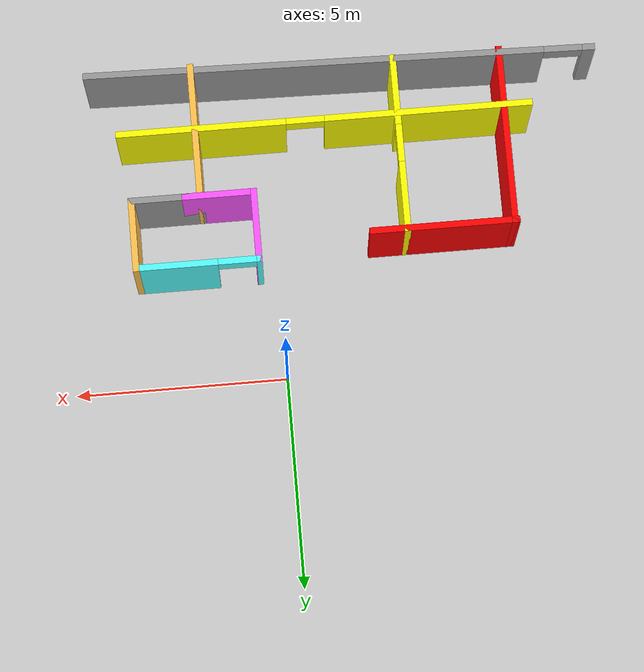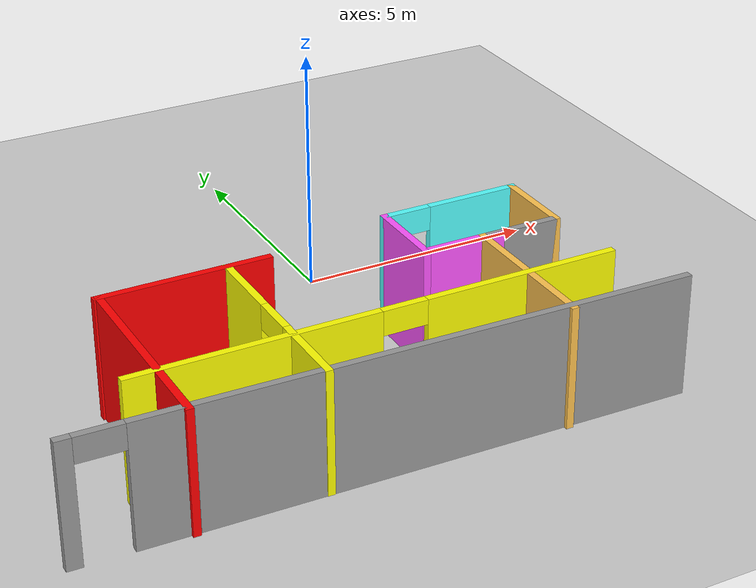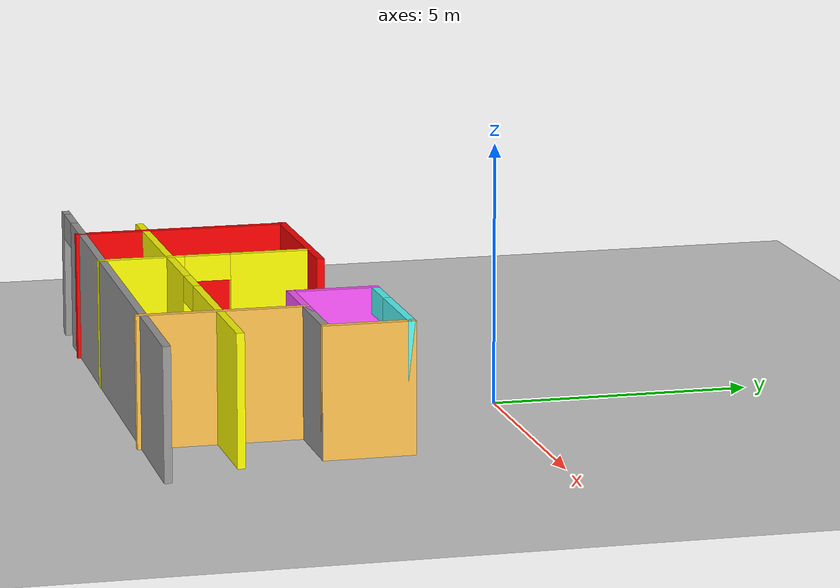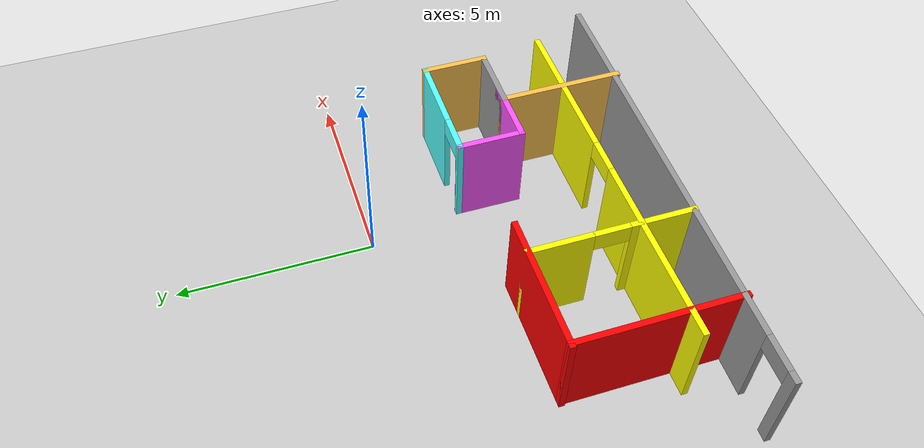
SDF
<sdf version="1.6">
 <world name="default">
  <model name="ground_plane">
   <static>1</static>
   <link name="link">
    <collision name="collision">
     <geometry><plane><normal>0 0 1</normal><size>100 100</size></plane></geometry>
     <surface><friction><ode><mu>100</mu><mu2>50</mu2></ode></friction></surface>
    </collision>
    <visual name="visual">
     <cast_shadows>0</cast_shadows>
     <geometry><plane><normal>0 0 1</normal><size>100 100</size></plane></geometry>
     <material>
      <script><uri>file://media/materials/scripts/gazebo.material</uri><name>Gazebo/Grey</name></script>
     </material>
    </visual>
   </link>
  </model>
  <model name="try_example">
   <link name="Wall_44">
    <pose>3.4314 -5.99122 0 0 -0 1.5708</pose>
    <visual name="Wall_44_Visual">
     <pose>0 0 1.25 0 -0 0</pose>
     <geometry><box><size>3.25 0.15 2.5</size></box></geometry>
     <material>
      <script><uri>file://media/materials/scripts/gazebo.material</uri><name>Gazebo/Grey</name></script>
      <ambient>1 0.764706 0.305882 1</ambient>
      <diffuse>0.7 0.7 0.7 1</diffuse>
      <specular>0.01 0.01 0.01 1</specular>
      <emissive>0 0 0 1</emissive>
     </material>
    </visual>
    <collision name="Wall_44_Collision">
     <pose>0 0 1.25 0 -0 0</pose>
     <geometry><box><size>3.25 0.15 2.5</size></box></geometry>
     <surface>
      <friction>
       <ode><mu>1</mu><mu2>1</mu2><fdir1>0 0 0</fdir1><slip1>0</slip1><slip2>0</slip2></ode>
       <torsional>
        <coefficient>1</coefficient>
        <patch_radius>0</patch_radius>
        <surface_radius>0</surface_radius>
        <use_patch_radius>1</use_patch_radius>
        <ode><slip>0</slip></ode>
       </torsional>
      </friction>
      <bounce><restitution_coefficient>0</restitution_coefficient><threshold>1e+06</threshold></bounce>
      <contact>
       <collide_without_contact>0</collide_without_contact>
       <collide_without_contact_bitmask>1</collide_without_contact_bitmask>
       <collide_bitmask>1</collide_bitmask>
       <ode>
        <soft_cfm>0</soft_cfm>
        <soft_erp>0.2</soft_erp>
        <kp>1e+13</kp>
        <kd>1</kd>
        <max_vel>0.01</max_vel>
        <min_depth>0</min_depth>
       </ode>
       <bullet>
        <split_impulse>1</split_impulse>
        <split_impulse_penetration_threshold>-0.01</split_impulse_penetration_threshold>
        <soft_cfm>0</soft_cfm>
        <soft_erp>0.2</soft_erp>
        <kp>1e+13</kp>
        <kd>1</kd>
       </bullet>
      </contact>
     </surface>
    </collision>
   </link>
   <link name="Wall_45">
    <pose>4.2314 -4.44122 0 0 -0 0</pose>
    <visual name="Wall_45_Visual">
     <pose>0 0 1.25 0 -0 0</pose>
     <geometry><box><size>1.75 0.15 2.5</size></box></geometry>
     <material>
      <script><uri>file://media/materials/scripts/gazebo.material</uri><name>Gazebo/Grey</name></script>
      <ambient>0 0 0 1</ambient>
      <diffuse>0.7 0.7 0.7 1</diffuse>
      <specular>0.01 0.01 0.01 1</specular>
      <emissive>0 0 0 1</emissive>
     </material>
    </visual>
    <collision name="Wall_45_Collision">
     <pose>0 0 1.25 0 -0 0</pose>
     <geometry><box><size>1.75 0.15 2.5</size></box></geometry>
     <surface>
      <friction>
       <ode><mu>1</mu><mu2>1</mu2><fdir1>0 0 0</fdir1><slip1>0</slip1><slip2>0</slip2></ode>
       <torsional>
        <coefficient>1</coefficient>
        <patch_radius>0</patch_radius>
        <surface_radius>0</surface_radius>
        <use_patch_radius>1</use_patch_radius>
        <ode><slip>0</slip></ode>
       </torsional>
      </friction>
      <bounce><restitution_coefficient>0</restitution_coefficient><threshold>1e+06</threshold></bounce>
      <contact>
       <collide_without_contact>0</collide_without_contact>
       <collide_without_contact_bitmask>1</collide_without_contact_bitmask>
       <collide_bitmask>1</collide_bitmask>
       <ode>
        <soft_cfm>0</soft_cfm>
        <soft_erp>0.2</soft_erp>
        <kp>1e+13</kp>
        <kd>1</kd>
        <max_vel>0.01</max_vel>
        <min_depth>0</min_depth>
       </ode>
       <bullet>
        <split_impulse>1</split_impulse>
        <split_impulse_penetration_threshold>-0.01</split_impulse_penetration_threshold>
        <soft_cfm>0</soft_cfm>
        <soft_erp>0.2</soft_erp>
        <kp>1e+13</kp>
        <kd>1</kd>
       </bullet>
      </contact>
     </surface>
    </collision>
   </link>
   <link name="Wall_46">
    <pose>5.0314 -3.64122 0 0 -0 1.5708</pose>
    <visual name="Wall_46_Visual">
     <pose>0 0 1.25 0 -0 0</pose>
     <geometry><box><size>1.75 0.15 2.5</size></box></geometry>
     <material>
      <script><uri>file://media/materials/scripts/gazebo.material</uri><name>Gazebo/Grey</name></script>
      <ambient>1 0.764706 0.305882 1</ambient>
      <diffuse>0.7 0.7 0.7 1</diffuse>
      <specular>0.01 0.01 0.01 1</specular>
      <emissive>0 0 0 1</emissive>
     </material>
    </visual>
    <collision name="Wall_46_Collision">
     <pose>0 0 1.25 0 -0 0</pose>
     <geometry><box><size>1.75 0.15 2.5</size></box></geometry>
     <surface>
      <friction>
       <ode><mu>1</mu><mu2>1</mu2><fdir1>0 0 0</fdir1><slip1>0</slip1><slip2>0</slip2></ode>
       <torsional>
        <coefficient>1</coefficient>
        <patch_radius>0</patch_radius>
        <surface_radius>0</surface_radius>
        <use_patch_radius>1</use_patch_radius>
        <ode><slip>0</slip></ode>
       </torsional>
      </friction>
      <bounce><restitution_coefficient>0</restitution_coefficient><threshold>1e+06</threshold></bounce>
      <contact>
       <collide_without_contact>0</collide_without_contact>
       <collide_without_contact_bitmask>1</collide_without_contact_bitmask>
       <collide_bitmask>1</collide_bitmask>
       <ode>
        <soft_cfm>0</soft_cfm>
        <soft_erp>0.2</soft_erp>
        <kp>1e+13</kp>
        <kd>1</kd>
        <max_vel>0.01</max_vel>
        <min_depth>0</min_depth>
       </ode>
       <bullet>
        <split_impulse>1</split_impulse>
        <split_impulse_penetration_threshold>-0.01</split_impulse_penetration_threshold>
        <soft_cfm>0</soft_cfm>
        <soft_erp>0.2</soft_erp>
        <kp>1e+13</kp>
        <kd>1</kd>
       </bullet>
      </contact>
     </surface>
    </collision>
   </link>
   <link name="Wall_47">
    <pose>3.6064 -2.84122 0 0 -0 3.14159</pose>
    <visual name="Wall_47_Visual_0">
     <pose>-0.515109 0 1.25 0 -0 0</pose>
     <geometry><box><size>1.96978 0.15 2.5</size></box></geometry>
     <material>
      <script><uri>file://media/materials/scripts/gazebo.material</uri><name>Gazebo/Grey</name></script>
      <ambient>0.333333 1 1 1</ambient>
      <diffuse>0.7 0.7 0.7 1</diffuse>
      <specular>0.01 0.01 0.01 1</specular>
      <emissive>0 0 0 1</emissive>
     </material>
    </visual>
    <visual name="Wall_47_Visual_1">
     <pose>1.43489 0 1.25 0 -0 0</pose>
     <geometry><box><size>0.130219 0.15 2.5</size></box></geometry>
     <material>
      <script><uri>file://media/materials/scripts/gazebo.material</uri><name>Gazebo/Grey</name></script>
      <ambient>0.333333 1 1 1</ambient>
      <diffuse>0.7 0.7 0.7 1</diffuse>
      <specular>0.01 0.01 0.01 1</specular>
      <emissive>0 0 0 1</emissive>
     </material>
    </visual>
    <visual name="Wall_47_Visual_2">
     <pose>0.919781 0 2.25 0 -0 0</pose>
     <geometry><box><size>0.9 0.15 0.5</size></box></geometry>
     <material>
      <script><uri>file://media/materials/scripts/gazebo.material</uri><name>Gazebo/Grey</name></script>
      <ambient>0.333333 1 1 1</ambient>
      <diffuse>0.7 0.7 0.7 1</diffuse>
      <specular>0.01 0.01 0.01 1</specular>
      <emissive>0 0 0 1</emissive>
     </material>
    </visual>
    <collision name="Wall_47_Collision_0">
     <pose>-0.515109 0 1.25 0 -0 0</pose>
     <geometry><box><size>1.96978 0.15 2.5</size></box></geometry>
     <surface>
      <friction>
       <ode><mu>1</mu><mu2>1</mu2><fdir1>0 0 0</fdir1><slip1>0</slip1><slip2>0</slip2></ode>
       <torsional>
        <coefficient>1</coefficient>
        <patch_radius>0</patch_radius>
        <surface_radius>0</surface_radius>
        <use_patch_radius>1</use_patch_radius>
        <ode><slip>0</slip></ode>
       </torsional>
      </friction>
      <bounce><restitution_coefficient>0</restitution_coefficient><threshold>1e+06</threshold></bounce>
      <contact>
       <collide_without_contact>0</collide_without_contact>
       <collide_without_contact_bitmask>1</collide_without_contact_bitmask>
       <collide_bitmask>1</collide_bitmask>
       <ode>
        <soft_cfm>0</soft_cfm>
        <soft_erp>0.2</soft_erp>
        <kp>1e+13</kp>
        <kd>1</kd>
        <max_vel>0.01</max_vel>
        <min_depth>0</min_depth>
       </ode>
       <bullet>
        <split_impulse>1</split_impulse>
        <split_impulse_penetration_threshold>-0.01</split_impulse_penetration_threshold>
        <soft_cfm>0</soft_cfm>
        <soft_erp>0.2</soft_erp>
        <kp>1e+13</kp>
        <kd>1</kd>
       </bullet>
      </contact>
     </surface>
    </collision>
    <collision name="Wall_47_Collision_1">
     <pose>1.43489 0 1.25 0 -0 0</pose>
     <geometry><box><size>0.130219 0.15 2.5</size></box></geometry>
     <surface>
      <friction>
       <ode><mu>1</mu><mu2>1</mu2><fdir1>0 0 0</fdir1><slip1>0</slip1><slip2>0</slip2></ode>
       <torsional>
        <coefficient>1</coefficient>
        <patch_radius>0</patch_radius>
        <surface_radius>0</surface_radius>
        <use_patch_radius>1</use_patch_radius>
        <ode><slip>0</slip></ode>
       </torsional>
      </friction>
      <bounce><restitution_coefficient>0</restitution_coefficient><threshold>1e+06</threshold></bounce>
      <contact>
       <collide_without_contact>0</collide_without_contact>
       <collide_without_contact_bitmask>1</collide_without_contact_bitmask>
       <collide_bitmask>1</collide_bitmask>
       <ode>
        <soft_cfm>0</soft_cfm>
        <soft_erp>0.2</soft_erp>
        <kp>1e+13</kp>
        <kd>1</kd>
        <max_vel>0.01</max_vel>
        <min_depth>0</min_depth>
       </ode>
       <bullet>
        <split_impulse>1</split_impulse>
        <split_impulse_penetration_threshold>-0.01</split_impulse_penetration_threshold>
        <soft_cfm>0</soft_cfm>
        <soft_erp>0.2</soft_erp>
        <kp>1e+13</kp>
        <kd>1</kd>
       </bullet>
      </contact>
     </surface>
    </collision>
    <collision name="Wall_47_Collision_2">
     <pose>0.919781 0 2.25 0 -0 0</pose>
     <geometry><box><size>0.9 0.15 0.5</size></box></geometry>
     <surface>
      <friction>
       <ode><mu>1</mu><mu2>1</mu2><fdir1>0 0 0</fdir1><slip1>0</slip1><slip2>0</slip2></ode>
       <torsional>
        <coefficient>1</coefficient>
        <patch_radius>0</patch_radius>
        <surface_radius>0</surface_radius>
        <use_patch_radius>1</use_patch_radius>
        <ode><slip>0</slip></ode>
       </torsional>
      </friction>
      <bounce><restitution_coefficient>0</restitution_coefficient><threshold>1e+06</threshold></bounce>
      <contact>
       <collide_without_contact>0</collide_without_contact>
       <collide_without_contact_bitmask>1</collide_without_contact_bitmask>
       <collide_bitmask>1</collide_bitmask>
       <ode>
        <soft_cfm>0</soft_cfm>
        <soft_erp>0.2</soft_erp>
        <kp>1e+13</kp>
        <kd>1</kd>
        <max_vel>0.01</max_vel>
        <min_depth>0</min_depth>
       </ode>
       <bullet>
        <split_impulse>1</split_impulse>
        <split_impulse_penetration_threshold>-0.01</split_impulse_penetration_threshold>
        <soft_cfm>0</soft_cfm>
        <soft_erp>0.2</soft_erp>
        <kp>1e+13</kp>
        <kd>1</kd>
       </bullet>
      </contact>
     </surface>
    </collision>
   </link>
   <link name="Wall_48">
    <pose>2.1814 -3.64122 0 0 0 -1.5708</pose>
    <visual name="Wall_48_Visual">
     <pose>0 0 1.25 0 -0 0</pose>
     <geometry><box><size>1.75 0.15 2.5</size></box></geometry>
     <material>
      <script><uri>file://media/materials/scripts/gazebo.material</uri><name>Gazebo/Grey</name></script>
      <ambient>1 0.333333 1 1</ambient>
      <diffuse>0.7 0.7 0.7 1</diffuse>
      <specular>0.01 0.01 0.01 1</specular>
      <emissive>0 0 0 1</emissive>
     </material>
    </visual>
    <collision name="Wall_48_Collision">
     <pose>0 0 1.25 0 -0 0</pose>
     <geometry><box><size>1.75 0.15 2.5</size></box></geometry>
     <surface>
      <friction>
       <ode><mu>1</mu><mu2>1</mu2><fdir1>0 0 0</fdir1><slip1>0</slip1><slip2>0</slip2></ode>
       <torsional>
        <coefficient>1</coefficient>
        <patch_radius>0</patch_radius>
        <surface_radius>0</surface_radius>
        <use_patch_radius>1</use_patch_radius>
        <ode><slip>0</slip></ode>
       </torsional>
      </friction>
      <bounce><restitution_coefficient>0</restitution_coefficient><threshold>1e+06</threshold></bounce>
      <contact>
       <collide_without_contact>0</collide_without_contact>
       <collide_without_contact_bitmask>1</collide_without_contact_bitmask>
       <collide_bitmask>1</collide_bitmask>
       <ode>
        <soft_cfm>0</soft_cfm>
        <soft_erp>0.2</soft_erp>
        <kp>1e+13</kp>
        <kd>1</kd>
        <max_vel>0.01</max_vel>
        <min_depth>0</min_depth>
       </ode>
       <bullet>
        <split_impulse>1</split_impulse>
        <split_impulse_penetration_threshold>-0.01</split_impulse_penetration_threshold>
        <soft_cfm>0</soft_cfm>
        <soft_erp>0.2</soft_erp>
        <kp>1e+13</kp>
        <kd>1</kd>
       </bullet>
      </contact>
     </surface>
    </collision>
   </link>
   <link name="Wall_49">
    <pose>2.9814 -4.44122 0 0 -0 0</pose>
    <visual name="Wall_49_Visual">
     <pose>0 0 1.25 0 -0 0</pose>
     <geometry><box><size>1.75 0.15 2.5</size></box></geometry>
     <material>
      <script><uri>file://media/materials/scripts/gazebo.material</uri><name>Gazebo/Grey</name></script>
      <ambient>1 0.333333 1 1</ambient>
      <diffuse>0.7 0.7 0.7 1</diffuse>
      <specular>0.01 0.01 0.01 1</specular>
      <emissive>0 0 0 1</emissive>
     </material>
    </visual>
    <collision name="Wall_49_Collision">
     <pose>0 0 1.25 0 -0 0</pose>
     <geometry><box><size>1.75 0.15 2.5</size></box></geometry>
     <surface>
      <friction>
       <ode><mu>1</mu><mu2>1</mu2><fdir1>0 0 0</fdir1><slip1>0</slip1><slip2>0</slip2></ode>
       <torsional>
        <coefficient>1</coefficient>
        <patch_radius>0</patch_radius>
        <surface_radius>0</surface_radius>
        <use_patch_radius>1</use_patch_radius>
        <ode><slip>0</slip></ode>
       </torsional>
      </friction>
      <bounce><restitution_coefficient>0</restitution_coefficient><threshold>1e+06</threshold></bounce>
      <contact>
       <collide_without_contact>0</collide_without_contact>
       <collide_without_contact_bitmask>1</collide_without_contact_bitmask>
       <collide_bitmask>1</collide_bitmask>
       <ode>
        <soft_cfm>0</soft_cfm>
        <soft_erp>0.2</soft_erp>
        <kp>1e+13</kp>
        <kd>1</kd>
        <max_vel>0.01</max_vel>
        <min_depth>0</min_depth>
       </ode>
       <bullet>
        <split_impulse>1</split_impulse>
        <split_impulse_penetration_threshold>-0.01</split_impulse_penetration_threshold>
        <soft_cfm>0</soft_cfm>
        <soft_erp>0.2</soft_erp>
        <kp>1e+13</kp>
        <kd>1</kd>
       </bullet>
      </contact>
     </surface>
    </collision>
   </link>
   <link name="Wall_5">
    <pose>-0.053538 -7.39332 0 0 -0 3.1205</pose>
    <visual name="Wall_5_Visual_0">
     <pose>-0.600759 0 1.25 0 -0 0</pose>
     <geometry><box><size>10.8011 0.15 2.5</size></box></geometry>
     <material>
      <script><uri>file://media/materials/scripts/gazebo.material</uri><name>Gazebo/Grey</name></script>
      <ambient>0 0 0 1</ambient>
      <diffuse>0.7 0.7 0.7 1</diffuse>
      <specular>0.01 0.01 0.01 1</specular>
      <emissive>0 0 0 1</emissive>
     </material>
    </visual>
    <visual name="Wall_5_Visual_1">
     <pose>5.85056 0 1.25 0 -0 0</pose>
     <geometry><box><size>0.301518 0.15 2.5</size></box></geometry>
     <material>
      <script><uri>file://media/materials/scripts/gazebo.material</uri><name>Gazebo/Grey</name></script>
      <ambient>0 0 0 1</ambient>
      <diffuse>0.7 0.7 0.7 1</diffuse>
      <specular>0.01 0.01 0.01 1</specular>
      <emissive>0 0 0 1</emissive>
     </material>
    </visual>
    <visual name="Wall_5_Visual_2">
     <pose>5.2498 0 2.25 0 -0 0</pose>
     <geometry><box><size>0.9 0.15 0.5</size></box></geometry>
     <material>
      <script><uri>file://media/materials/scripts/gazebo.material</uri><name>Gazebo/Grey</name></script>
      <ambient>0 0 0 1</ambient>
      <diffuse>0.7 0.7 0.7 1</diffuse>
      <specular>0.01 0.01 0.01 1</specular>
      <emissive>0 0 0 1</emissive>
     </material>
    </visual>
    <collision name="Wall_5_Collision_0">
     <pose>-0.600759 0 1.25 0 -0 0</pose>
     <geometry><box><size>10.8011 0.15 2.5</size></box></geometry>
     <surface>
      <friction>
       <ode><mu>1</mu><mu2>1</mu2><fdir1>0 0 0</fdir1><slip1>0</slip1><slip2>0</slip2></ode>
       <torsional>
        <coefficient>1</coefficient>
        <patch_radius>0</patch_radius>
        <surface_radius>0</surface_radius>
        <use_patch_radius>1</use_patch_radius>
        <ode><slip>0</slip></ode>
       </torsional>
      </friction>
      <bounce><restitution_coefficient>0</restitution_coefficient><threshold>1e+06</threshold></bounce>
      <contact>
       <collide_without_contact>0</collide_without_contact>
       <collide_without_contact_bitmask>1</collide_without_contact_bitmask>
       <collide_bitmask>1</collide_bitmask>
       <ode>
        <soft_cfm>0</soft_cfm>
        <soft_erp>0.2</soft_erp>
        <kp>1e+13</kp>
        <kd>1</kd>
        <max_vel>0.01</max_vel>
        <min_depth>0</min_depth>
       </ode>
       <bullet>
        <split_impulse>1</split_impulse>
        <split_impulse_penetration_threshold>-0.01</split_impulse_penetration_threshold>
        <soft_cfm>0</soft_cfm>
        <soft_erp>0.2</soft_erp>
        <kp>1e+13</kp>
        <kd>1</kd>
       </bullet>
      </contact>
     </surface>
    </collision>
    <collision name="Wall_5_Collision_1">
     <pose>5.85056 0 1.25 0 -0 0</pose>
     <geometry><box><size>0.301518 0.15 2.5</size></box></geometry>
     <surface>
      <friction>
       <ode><mu>1</mu><mu2>1</mu2><fdir1>0 0 0</fdir1><slip1>0</slip1><slip2>0</slip2></ode>
       <torsional>
        <coefficient>1</coefficient>
        <patch_radius>0</patch_radius>
        <surface_radius>0</surface_radius>
        <use_patch_radius>1</use_patch_radius>
        <ode><slip>0</slip></ode>
       </torsional>
      </friction>
      <bounce><restitution_coefficient>0</restitution_coefficient><threshold>1e+06</threshold></bounce>
      <contact>
       <collide_without_contact>0</collide_without_contact>
       <collide_without_contact_bitmask>1</collide_without_contact_bitmask>
       <collide_bitmask>1</collide_bitmask>
       <ode>
        <soft_cfm>0</soft_cfm>
        <soft_erp>0.2</soft_erp>
        <kp>1e+13</kp>
        <kd>1</kd>
        <max_vel>0.01</max_vel>
        <min_depth>0</min_depth>
       </ode>
       <bullet>
        <split_impulse>1</split_impulse>
        <split_impulse_penetration_threshold>-0.01</split_impulse_penetration_threshold>
        <soft_cfm>0</soft_cfm>
        <soft_erp>0.2</soft_erp>
        <kp>1e+13</kp>
        <kd>1</kd>
       </bullet>
      </contact>
     </surface>
    </collision>
    <collision name="Wall_5_Collision_2">
     <pose>5.2498 0 2.25 0 -0 0</pose>
     <geometry><box><size>0.9 0.15 0.5</size></box></geometry>
     <surface>
      <friction>
       <ode><mu>1</mu><mu2>1</mu2><fdir1>0 0 0</fdir1><slip1>0</slip1><slip2>0</slip2></ode>
       <torsional>
        <coefficient>1</coefficient>
        <patch_radius>0</patch_radius>
        <surface_radius>0</surface_radius>
        <use_patch_radius>1</use_patch_radius>
        <ode><slip>0</slip></ode>
       </torsional>
      </friction>
      <bounce><restitution_coefficient>0</restitution_coefficient><threshold>1e+06</threshold></bounce>
      <contact>
       <collide_without_contact>0</collide_without_contact>
       <collide_without_contact_bitmask>1</collide_without_contact_bitmask>
       <collide_bitmask>1</collide_bitmask>
       <ode>
        <soft_cfm>0</soft_cfm>
        <soft_erp>0.2</soft_erp>
        <kp>1e+13</kp>
        <kd>1</kd>
        <max_vel>0.01</max_vel>
        <min_depth>0</min_depth>
       </ode>
       <bullet>
        <split_impulse>1</split_impulse>
        <split_impulse_penetration_threshold>-0.01</split_impulse_penetration_threshold>
        <soft_cfm>0</soft_cfm>
        <soft_erp>0.2</soft_erp>
        <kp>1e+13</kp>
        <kd>1</kd>
       </bullet>
      </contact>
     </surface>
    </collision>
   </link>
   <link name="Wall_51">
    <pose>0.406817 -6.05023 0 0 -0 0</pose>
    <visual name="Wall_51_Visual_1">
     <pose>2.88516 0 1.25 0 -0 0</pose>
     <geometry><box><size>3.97968 0.15 2.5</size></box></geometry>
     <material>
      <script><uri>file://media/materials/scripts/gazebo.material</uri><name>Gazebo/Grey</name></script>
      <ambient>1 1 0 1</ambient>
      <diffuse>0.7 0.7 0.7 1</diffuse>
      <specular>0.01 0.01 0.01 1</specular>
      <emissive>0 0 0 1</emissive>
     </material>
    </visual>
    <visual name="Wall_51_Visual_0">
     <pose>-2.43984 0 1.25 0 -0 0</pose>
     <geometry><box><size>4.87032 0.15 2.5</size></box></geometry>
     <material>
      <script><uri>file://media/materials/scripts/gazebo.material</uri><name>Gazebo/Grey</name></script>
      <ambient>1 1 0 1</ambient>
      <diffuse>0.7 0.7 0.7 1</diffuse>
      <specular>0.01 0.01 0.01 1</specular>
      <emissive>0 0 0 1</emissive>
     </material>
    </visual>
    <visual name="Wall_51_Visual_2">
     <pose>0.445322 0 2.25 0 -0 0</pose>
     <geometry><box><size>0.9 0.15 0.5</size></box></geometry>
     <material>
      <script><uri>file://media/materials/scripts/gazebo.material</uri><name>Gazebo/Grey</name></script>
      <ambient>1 1 0 1</ambient>
      <diffuse>0.7 0.7 0.7 1</diffuse>
      <specular>0.01 0.01 0.01 1</specular>
      <emissive>0 0 0 1</emissive>
     </material>
    </visual>
    <collision name="Wall_51_Collision_0">
     <pose>-2.43984 0 1.25 0 -0 0</pose>
     <geometry><box><size>4.87032 0.15 2.5</size></box></geometry>
     <surface>
      <friction>
       <ode><mu>1</mu><mu2>1</mu2><fdir1>0 0 0</fdir1><slip1>0</slip1><slip2>0</slip2></ode>
       <torsional>
        <coefficient>1</coefficient>
        <patch_radius>0</patch_radius>
        <surface_radius>0</surface_radius>
        <use_patch_radius>1</use_patch_radius>
        <ode><slip>0</slip></ode>
       </torsional>
      </friction>
      <bounce><restitution_coefficient>0</restitution_coefficient><threshold>1e+06</threshold></bounce>
      <contact>
       <collide_without_contact>0</collide_without_contact>
       <collide_without_contact_bitmask>1</collide_without_contact_bitmask>
       <collide_bitmask>1</collide_bitmask>
       <ode>
        <soft_cfm>0</soft_cfm>
        <soft_erp>0.2</soft_erp>
        <kp>1e+13</kp>
        <kd>1</kd>
        <max_vel>0.01</max_vel>
        <min_depth>0</min_depth>
       </ode>
       <bullet>
        <split_impulse>1</split_impulse>
        <split_impulse_penetration_threshold>-0.01</split_impulse_penetration_threshold>
        <soft_cfm>0</soft_cfm>
        <soft_erp>0.2</soft_erp>
        <kp>1e+13</kp>
        <kd>1</kd>
       </bullet>
      </contact>
     </surface>
    </collision>
    <collision name="Wall_51_Collision_1">
     <pose>2.88516 0 1.25 0 -0 0</pose>
     <geometry><box><size>3.97968 0.15 2.5</size></box></geometry>
     <surface>
      <friction>
       <ode><mu>1</mu><mu2>1</mu2><fdir1>0 0 0</fdir1><slip1>0</slip1><slip2>0</slip2></ode>
       <torsional>
        <coefficient>1</coefficient>
        <patch_radius>0</patch_radius>
        <surface_radius>0</surface_radius>
        <use_patch_radius>1</use_patch_radius>
        <ode><slip>0</slip></ode>
       </torsional>
      </friction>
      <bounce><restitution_coefficient>0</restitution_coefficient><threshold>1e+06</threshold></bounce>
      <contact>
       <collide_without_contact>0</collide_without_contact>
       <collide_without_contact_bitmask>1</collide_without_contact_bitmask>
       <collide_bitmask>1</collide_bitmask>
       <ode>
        <soft_cfm>0</soft_cfm>
        <soft_erp>0.2</soft_erp>
        <kp>1e+13</kp>
        <kd>1</kd>
        <max_vel>0.01</max_vel>
        <min_depth>0</min_depth>
       </ode>
       <bullet>
        <split_impulse>1</split_impulse>
        <split_impulse_penetration_threshold>-0.01</split_impulse_penetration_threshold>
        <soft_cfm>0</soft_cfm>
        <soft_erp>0.2</soft_erp>
        <kp>1e+13</kp>
        <kd>1</kd>
       </bullet>
      </contact>
     </surface>
    </collision>
    <collision name="Wall_51_Collision_2">
     <pose>0.445322 0 2.25 0 -0 0</pose>
     <geometry><box><size>0.9 0.15 0.5</size></box></geometry>
     <surface>
      <friction>
       <ode><mu>1</mu><mu2>1</mu2><fdir1>0 0 0</fdir1><slip1>0</slip1><slip2>0</slip2></ode>
       <torsional>
        <coefficient>1</coefficient>
        <patch_radius>0</patch_radius>
        <surface_radius>0</surface_radius>
        <use_patch_radius>1</use_patch_radius>
        <ode><slip>0</slip></ode>
       </torsional>
      </friction>
      <bounce><restitution_coefficient>0</restitution_coefficient><threshold>1e+06</threshold></bounce>
      <contact>
       <collide_without_contact>0</collide_without_contact>
       <collide_without_contact_bitmask>1</collide_without_contact_bitmask>
       <collide_bitmask>1</collide_bitmask>
       <ode>
        <soft_cfm>0</soft_cfm>
        <soft_erp>0.2</soft_erp>
        <kp>1e+13</kp>
        <kd>1</kd>
        <max_vel>0.01</max_vel>
        <min_depth>0</min_depth>
       </ode>
       <bullet>
        <split_impulse>1</split_impulse>
        <split_impulse_penetration_threshold>-0.01</split_impulse_penetration_threshold>
        <soft_cfm>0</soft_cfm>
        <soft_erp>0.2</soft_erp>
        <kp>1e+13</kp>
        <kd>1</kd>
       </bullet>
      </contact>
     </surface>
    </collision>
   </link>
   <link name="Wall_7">
    <pose>-3.8025 -5.3294 0 0 -0 1.5708</pose>
    <visual name="Wall_7_Visual">
     <pose>0 0 1.25 0 -0 0</pose>
     <geometry><box><size>4.25 0.15 2.5</size></box></geometry>
     <material>
      <script><uri>file://media/materials/scripts/gazebo.material</uri><name>Gazebo/Grey</name></script>
      <ambient>1 0 0 1</ambient>
      <diffuse>0.7 0.7 0.7 1</diffuse>
      <specular>0.01 0.01 0.01 1</specular>
      <emissive>0 0 0 1</emissive>
     </material>
    </visual>
    <collision name="Wall_7_Collision">
     <pose>0 0 1.25 0 -0 0</pose>
     <geometry><box><size>4.25 0.15 2.5</size></box></geometry>
     <surface>
      <friction>
       <ode><mu>1</mu><mu2>1</mu2><fdir1>0 0 0</fdir1><slip1>0</slip1><slip2>0</slip2></ode>
       <torsional>
        <coefficient>1</coefficient>
        <patch_radius>0</patch_radius>
        <surface_radius>0</surface_radius>
        <use_patch_radius>1</use_patch_radius>
        <ode><slip>0</slip></ode>
       </torsional>
      </friction>
      <bounce><restitution_coefficient>0</restitution_coefficient><threshold>1e+06</threshold></bounce>
      <contact>
       <collide_without_contact>0</collide_without_contact>
       <collide_without_contact_bitmask>1</collide_without_contact_bitmask>
       <collide_bitmask>1</collide_bitmask>
       <ode>
        <soft_cfm>0</soft_cfm>
        <soft_erp>0.2</soft_erp>
        <kp>1e+13</kp>
        <kd>1</kd>
        <max_vel>0.01</max_vel>
        <min_depth>0</min_depth>
       </ode>
       <bullet>
        <split_impulse>1</split_impulse>
        <split_impulse_penetration_threshold>-0.01</split_impulse_penetration_threshold>
        <soft_cfm>0</soft_cfm>
        <soft_erp>0.2</soft_erp>
        <kp>1e+13</kp>
        <kd>1</kd>
       </bullet>
      </contact>
     </surface>
    </collision>
   </link>
   <link name="Wall_8">
    <pose>-2.16977 -3.2794 0 0 -0 0</pose>
    <visual name="Wall_8_Visual">
     <pose>0 0 1.25 0 -0 0</pose>
     <geometry><box><size>3.5 0.15 2.5</size></box></geometry>
     <material>
      <script><uri>file://media/materials/scripts/gazebo.material</uri><name>Gazebo/Grey</name></script>
      <ambient>1 0 0 1</ambient>
      <diffuse>0.7 0.7 0.7 1</diffuse>
      <specular>0.01 0.01 0.01 1</specular>
      <emissive>0 0 0 1</emissive>
     </material>
    </visual>
    <collision name="Wall_8_Collision">
     <pose>0 0 1.25 0 -0 0</pose>
     <geometry><box><size>3.5 0.15 2.5</size></box></geometry>
     <surface>
      <friction>
       <ode><mu>1</mu><mu2>1</mu2><fdir1>0 0 0</fdir1><slip1>0</slip1><slip2>0</slip2></ode>
       <torsional>
        <coefficient>1</coefficient>
        <patch_radius>0</patch_radius>
        <surface_radius>0</surface_radius>
        <use_patch_radius>1</use_patch_radius>
        <ode><slip>0</slip></ode>
       </torsional>
      </friction>
      <bounce><restitution_coefficient>0</restitution_coefficient><threshold>1e+06</threshold></bounce>
      <contact>
       <collide_without_contact>0</collide_without_contact>
       <collide_without_contact_bitmask>1</collide_without_contact_bitmask>
       <collide_bitmask>1</collide_bitmask>
       <ode>
        <soft_cfm>0</soft_cfm>
        <soft_erp>0.2</soft_erp>
        <kp>1e+13</kp>
        <kd>1</kd>
        <max_vel>0.01</max_vel>
        <min_depth>0</min_depth>
       </ode>
       <bullet>
        <split_impulse>1</split_impulse>
        <split_impulse_penetration_threshold>-0.01</split_impulse_penetration_threshold>
        <soft_cfm>0</soft_cfm>
        <soft_erp>0.2</soft_erp>
        <kp>1e+13</kp>
        <kd>1</kd>
       </bullet>
      </contact>
     </surface>
    </collision>
   </link>
   <link name="Wall_9">
    <pose>-1.30971 -5.3294 0 0 0 -1.5708</pose>
    <visual name="Wall_9_Visual_0">
     <pose>-1.28932 0 1.25 0 -0 0</pose>
     <geometry><box><size>1.67136 0.15 2.5</size></box></geometry>
     <material>
      <script><uri>file://media/materials/scripts/gazebo.material</uri><name>Gazebo/Grey</name></script>
      <ambient>1 1 0 1</ambient>
      <diffuse>0.7 0.7 0.7 1</diffuse>
      <specular>0.01 0.01 0.01 1</specular>
      <emissive>0 0 0 1</emissive>
     </material>
    </visual>
    <visual name="Wall_9_Visual_1">
     <pose>1.28568 0 1.25 0 -0 0</pose>
     <geometry><box><size>1.67864 0.15 2.5</size></box></geometry>
     <material>
      <script><uri>file://media/materials/scripts/gazebo.material</uri><name>Gazebo/Grey</name></script>
      <ambient>1 1 0 1</ambient>
      <diffuse>0.7 0.7 0.7 1</diffuse>
      <specular>0.01 0.01 0.01 1</specular>
      <emissive>0 0 0 1</emissive>
     </material>
    </visual>
    <visual name="Wall_9_Visual_2">
     <pose>-0.003643 0 2.25 0 -0 0</pose>
     <geometry><box><size>0.9 0.15 0.5</size></box></geometry>
     <material>
      <script><uri>file://media/materials/scripts/gazebo.material</uri><name>Gazebo/Grey</name></script>
      <ambient>1 1 0 1</ambient>
      <diffuse>0.7 0.7 0.7 1</diffuse>
      <specular>0.01 0.01 0.01 1</specular>
      <emissive>0 0 0 1</emissive>
     </material>
    </visual>
    <collision name="Wall_9_Collision_0">
     <pose>-1.28932 0 1.25 0 -0 0</pose>
     <geometry><box><size>1.67136 0.15 2.5</size></box></geometry>
     <surface>
      <friction>
       <ode><mu>1</mu><mu2>1</mu2><fdir1>0 0 0</fdir1><slip1>0</slip1><slip2>0</slip2></ode>
       <torsional>
        <coefficient>1</coefficient>
        <patch_radius>0</patch_radius>
        <surface_radius>0</surface_radius>
        <use_patch_radius>1</use_patch_radius>
        <ode><slip>0</slip></ode>
       </torsional>
      </friction>
      <bounce><restitution_coefficient>0</restitution_coefficient><threshold>1e+06</threshold></bounce>
      <contact>
       <collide_without_contact>0</collide_without_contact>
       <collide_without_contact_bitmask>1</collide_without_contact_bitmask>
       <collide_bitmask>1</collide_bitmask>
       <ode>
        <soft_cfm>0</soft_cfm>
        <soft_erp>0.2</soft_erp>
        <kp>1e+13</kp>
        <kd>1</kd>
        <max_vel>0.01</max_vel>
        <min_depth>0</min_depth>
       </ode>
       <bullet>
        <split_impulse>1</split_impulse>
        <split_impulse_penetration_threshold>-0.01</split_impulse_penetration_threshold>
        <soft_cfm>0</soft_cfm>
        <soft_erp>0.2</soft_erp>
        <kp>1e+13</kp>
        <kd>1</kd>
       </bullet>
      </contact>
     </surface>
    </collision>
    <collision name="Wall_9_Collision_1">
     <pose>1.28568 0 1.25 0 -0 0</pose>
     <geometry><box><size>1.67864 0.15 2.5</size></box></geometry>
     <surface>
      <friction>
       <ode><mu>1</mu><mu2>1</mu2><fdir1>0 0 0</fdir1><slip1>0</slip1><slip2>0</slip2></ode>
       <torsional>
        <coefficient>1</coefficient>
        <patch_radius>0</patch_radius>
        <surface_radius>0</surface_radius>
        <use_patch_radius>1</use_patch_radius>
        <ode><slip>0</slip></ode>
       </torsional>
      </friction>
      <bounce><restitution_coefficient>0</restitution_coefficient><threshold>1e+06</threshold></bounce>
      <contact>
       <collide_without_contact>0</collide_without_contact>
       <collide_without_contact_bitmask>1</collide_without_contact_bitmask>
       <collide_bitmask>1</collide_bitmask>
       <ode>
        <soft_cfm>0</soft_cfm>
        <soft_erp>0.2</soft_erp>
        <kp>1e+13</kp>
        <kd>1</kd>
        <max_vel>0.01</max_vel>
        <min_depth>0</min_depth>
       </ode>
       <bullet>
        <split_impulse>1</split_impulse>
        <split_impulse_penetration_threshold>-0.01</split_impulse_penetration_threshold>
        <soft_cfm>0</soft_cfm>
        <soft_erp>0.2</soft_erp>
        <kp>1e+13</kp>
        <kd>1</kd>
       </bullet>
      </contact>
     </surface>
    </collision>
    <collision name="Wall_9_Collision_2">
     <pose>-0.003643 0 2.25 0 -0 0</pose>
     <geometry><box><size>0.9 0.15 0.5</size></box></geometry>
     <surface>
      <friction>
       <ode><mu>1</mu><mu2>1</mu2><fdir1>0 0 0</fdir1><slip1>0</slip1><slip2>0</slip2></ode>
       <torsional>
        <coefficient>1</coefficient>
        <patch_radius>0</patch_radius>
        <surface_radius>0</surface_radius>
        <use_patch_radius>1</use_patch_radius>
        <ode><slip>0</slip></ode>
       </torsional>
      </friction>
      <bounce><restitution_coefficient>0</restitution_coefficient><threshold>1e+06</threshold></bounce>
      <contact>
       <collide_without_contact>0</collide_without_contact>
       <collide_without_contact_bitmask>1</collide_without_contact_bitmask>
       <collide_bitmask>1</collide_bitmask>
       <ode>
        <soft_cfm>0</soft_cfm>
        <soft_erp>0.2</soft_erp>
        <kp>1e+13</kp>
        <kd>1</kd>
        <max_vel>0.01</max_vel>
        <min_depth>0</min_depth>
       </ode>
       <bullet>
        <split_impulse>1</split_impulse>
        <split_impulse_penetration_threshold>-0.01</split_impulse_penetration_threshold>
        <soft_cfm>0</soft_cfm>
        <soft_erp>0.2</soft_erp>
        <kp>1e+13</kp>
        <kd>1</kd>
       </bullet>
      </contact>
     </surface>
    </collision>
   </link>
   <static>1</static>
   <pose>-1.73418 0.413361 0 0 -0 0</pose>
  </model>
 </world>
</sdf>
